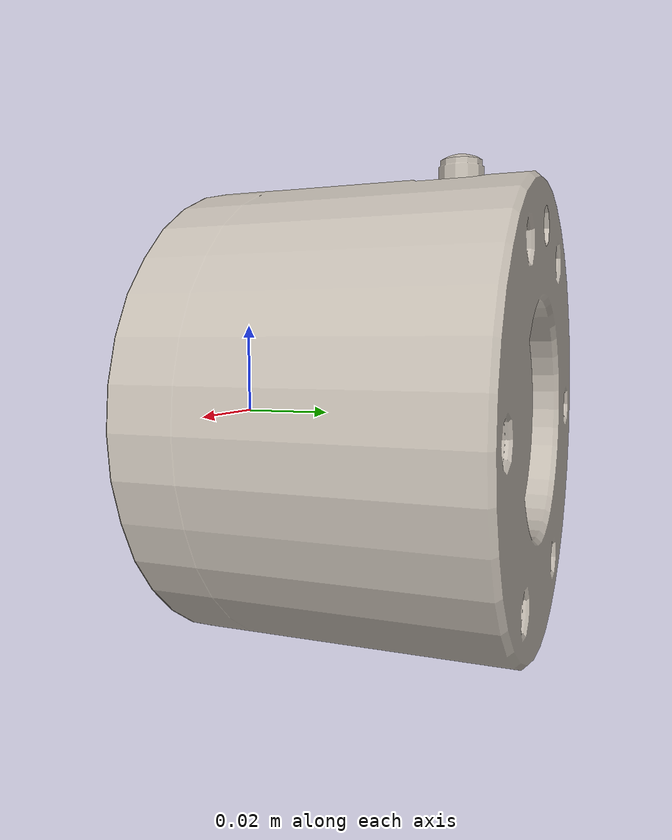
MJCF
<mujoco model="wrist3">
  <default>
    <default class="visual">
      <geom group="2" type="mesh" contype="0" conaffinity="0"/>
    </default>
    <default class="collision">
      <geom group="3" type="mesh"/>
    </default>
  </default>
  <asset>
    <texture type="2d" name="UR20_DIFF_8bit_2K" file="UR20_DIFF_8bit_2K.png"/>
    <material name="UR20_DIFF_8bit_2K_png.004" texture="UR20_DIFF_8bit_2K" specular="0.0" shininess="0.25"/>
    <mesh file="wrist3.obj"/>
  </asset>
  <worldbody>
    <body name="wrist3">
      <geom material="UR20_DIFF_8bit_2K_png.004" mesh="wrist3" class="visual"/>
      <geom mesh="wrist3" class="collision"/>
    </body>
  </worldbody>
</mujoco>
